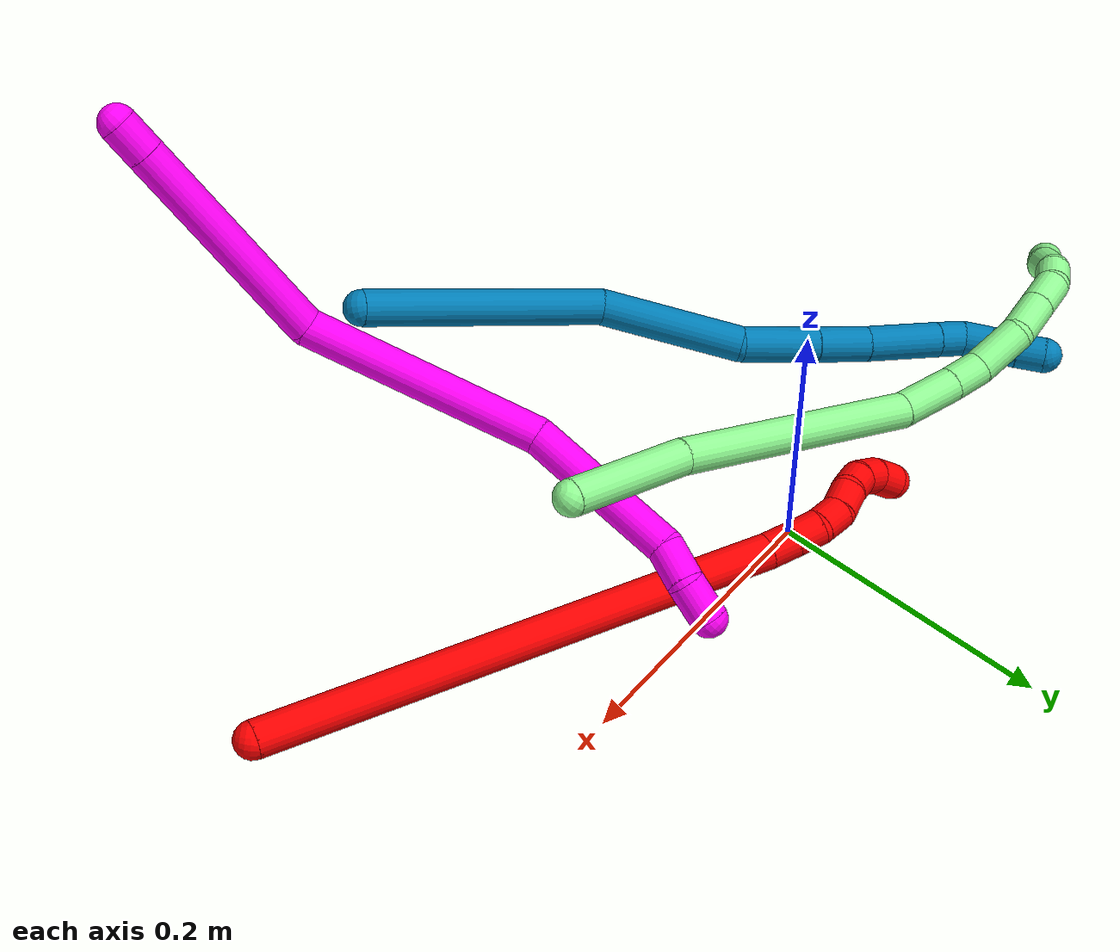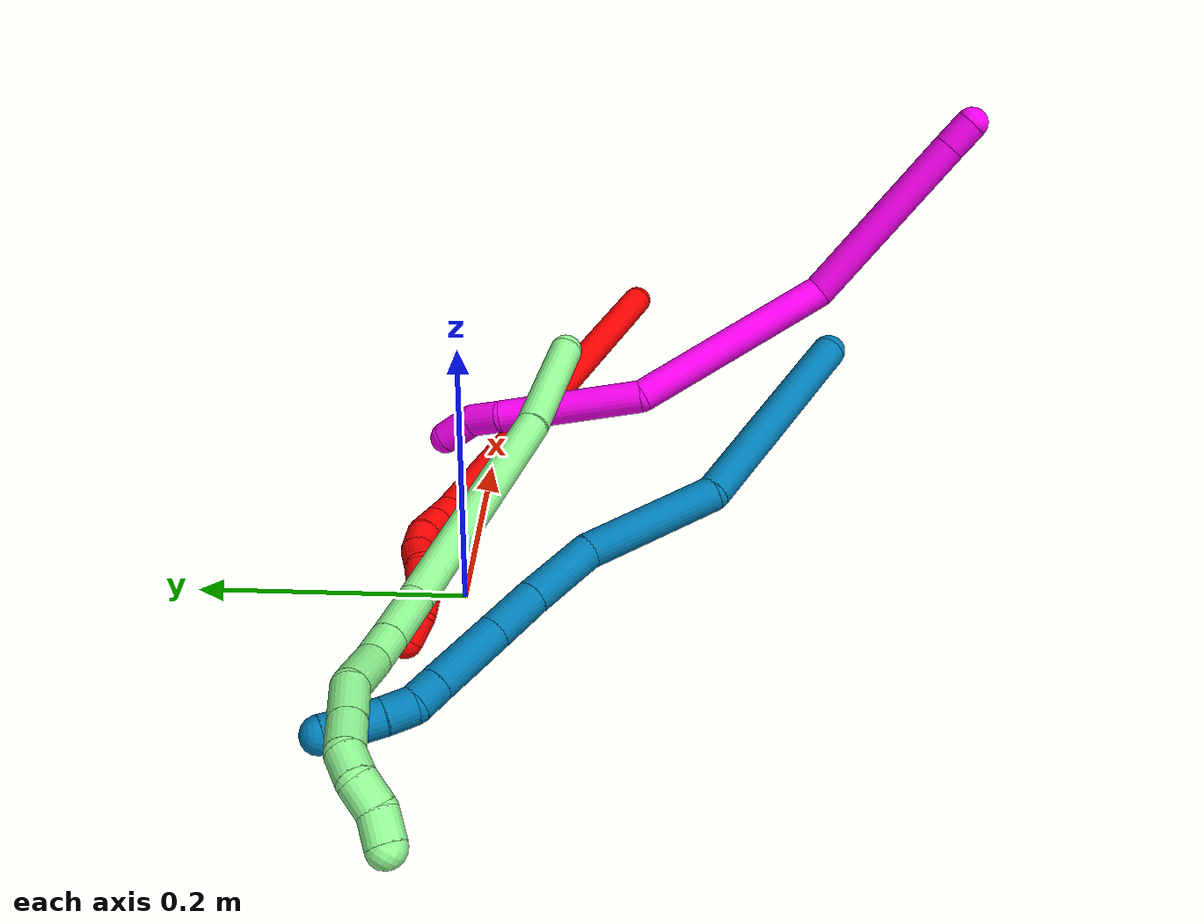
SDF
<sdf version="1.7">
 <world name="default">
  <model name="2">
   <static>0</static>
   <link name="2">
    <collision name="collision-cylinder-e_1_1_4">
     <pose>-0.088012 0.017736 -0.155896 -3.02831 -0.511203 2.71425</pose>
     <geometry><cylinder><radius>0.0125</radius><length>0.359801</length></cylinder></geometry>
     <surface>
      <friction><ode><mu>1.16</mu><mu2>1.16</mu2><slip1>0</slip1><slip2>0</slip2></ode></friction>
      <contact><ode><kp>1e+06</kp><kd>1</kd><max_vel>0</max_vel><min_depth>0.001</min_depth></ode></contact>
     </surface>
    </collision>
    <visual name="visual-cylinder-e_1_1_4">
     <pose>-0.088012 0.017736 -0.155896 -3.02831 -0.511203 2.71425</pose>
     <geometry><cylinder><radius>0.0125</radius><length>0.359801</length></cylinder></geometry>
     <material><ambient>1 0 0 1</ambient></material>
    </visual>
    <collision name="collision-cylinder-e_2_4_5">
     <pose>-0.180778 0.037908 -0.320346 -2.86424 -0.490787 2.12473</pose>
     <geometry><cylinder><radius>0.0125</radius><length>0.020171</length></cylinder></geometry>
     <surface>
      <friction><ode><mu>1.16</mu><mu2>1.16</mu2><slip1>0</slip1><slip2>0</slip2></ode></friction>
      <contact><ode><kp>1e+06</kp><kd>1</kd><max_vel>0</max_vel><min_depth>0.001</min_depth></ode></contact>
     </surface>
    </collision>
    <visual name="visual-cylinder-e_2_4_5">
     <pose>-0.180778 0.037908 -0.320346 -2.86424 -0.490787 2.12473</pose>
     <geometry><cylinder><radius>0.0125</radius><length>0.020171</length></cylinder></geometry>
     <material><ambient>1 0 0 1</ambient></material>
    </visual>
    <collision name="collision-cylinder-e_3_5_6">
     <pose>-0.19037 0.04295 -0.337268 -2.83963 -0.504511 2.07514</pose>
     <geometry><cylinder><radius>0.0125</radius><length>0.020021</length></cylinder></geometry>
     <surface>
      <friction><ode><mu>1.16</mu><mu2>1.16</mu2><slip1>0</slip1><slip2>0</slip2></ode></friction>
      <contact><ode><kp>1e+06</kp><kd>1</kd><max_vel>0</max_vel><min_depth>0.001</min_depth></ode></contact>
     </surface>
    </collision>
    <visual name="visual-cylinder-e_3_5_6">
     <pose>-0.19037 0.04295 -0.337268 -2.83963 -0.504511 2.07514</pose>
     <geometry><cylinder><radius>0.0125</radius><length>0.020021</length></cylinder></geometry>
     <material><ambient>1 0 0 1</ambient></material>
    </visual>
    <collision name="collision-cylinder-e_4_6_7">
     <pose>-0.202535 0.046475 -0.352382 -3.00616 -0.821906 2.8328</pose>
     <geometry><cylinder><radius>0.0125</radius><length>0.020004</length></cylinder></geometry>
     <surface>
      <friction><ode><mu>1.16</mu><mu2>1.16</mu2><slip1>0</slip1><slip2>0</slip2></ode></friction>
      <contact><ode><kp>1e+06</kp><kd>1</kd><max_vel>0</max_vel><min_depth>0.001</min_depth></ode></contact>
     </surface>
    </collision>
    <visual name="visual-cylinder-e_4_6_7">
     <pose>-0.202535 0.046475 -0.352382 -3.00616 -0.821906 2.8328</pose>
     <geometry><cylinder><radius>0.0125</radius><length>0.020004</length></cylinder></geometry>
     <material><ambient>1 0 0 1</ambient></material>
    </visual>
    <collision name="collision-cylinder-e_5_7_8">
     <pose>-0.219032 0.048846 -0.362842 -2.76899 -1.1608 2.5818</pose>
     <geometry><cylinder><radius>0.0125</radius><length>0.020001</length></cylinder></geometry>
     <surface>
      <friction><ode><mu>1.16</mu><mu2>1.16</mu2><slip1>0</slip1><slip2>0</slip2></ode></friction>
      <contact><ode><kp>1e+06</kp><kd>1</kd><max_vel>0</max_vel><min_depth>0.001</min_depth></ode></contact>
     </surface>
    </collision>
    <visual name="visual-cylinder-e_5_7_8">
     <pose>-0.219032 0.048846 -0.362842 -2.76899 -1.1608 2.5818</pose>
     <geometry><cylinder><radius>0.0125</radius><length>0.020001</length></cylinder></geometry>
     <material><ambient>1 0 0 1</ambient></material>
    </visual>
    <collision name="collision-cylinder-e_6_8_9">
     <pose>-0.236994 0.048543 -0.37099 2.76507 -1.07372 -2.52199</pose>
     <geometry><cylinder><radius>0.0125</radius><length>0.020001</length></cylinder></geometry>
     <surface>
      <friction><ode><mu>1.16</mu><mu2>1.16</mu2><slip1>0</slip1><slip2>0</slip2></ode></friction>
      <contact><ode><kp>1e+06</kp><kd>1</kd><max_vel>0</max_vel><min_depth>0.001</min_depth></ode></contact>
     </surface>
    </collision>
    <visual name="visual-cylinder-e_6_8_9">
     <pose>-0.236994 0.048543 -0.37099 2.76507 -1.07372 -2.52199</pose>
     <geometry><cylinder><radius>0.0125</radius><length>0.020001</length></cylinder></geometry>
     <material><ambient>1 0 0 1</ambient></material>
    </visual>
    <collision name="collision-cylinder-e_7_9_10">
     <pose>-0.252074 0.043144 -0.382291 2.65345 -0.68021 -1.91508</pose>
     <geometry><cylinder><radius>0.0125</radius><length>0.02</length></cylinder></geometry>
     <surface>
      <friction><ode><mu>1.16</mu><mu2>1.16</mu2><slip1>0</slip1><slip2>0</slip2></ode></friction>
      <contact><ode><kp>1e+06</kp><kd>1</kd><max_vel>0</max_vel><min_depth>0.001</min_depth></ode></contact>
     </surface>
    </collision>
    <visual name="visual-cylinder-e_7_9_10">
     <pose>-0.252074 0.043144 -0.382291 2.65345 -0.68021 -1.91508</pose>
     <geometry><cylinder><radius>0.0125</radius><length>0.02</length></cylinder></geometry>
     <material><ambient>1 0 0 1</ambient></material>
    </visual>
    <collision name="collision-cylinder-e_8_10_2">
     <pose>-0.261709 0.034583 -0.397199 2.59304 -0.341098 -1.09852</pose>
     <geometry><cylinder><radius>0.0125</radius><length>0.020001</length></cylinder></geometry>
     <surface>
      <friction><ode><mu>1.16</mu><mu2>1.16</mu2><slip1>0</slip1><slip2>0</slip2></ode></friction>
      <contact><ode><kp>1e+06</kp><kd>1</kd><max_vel>0</max_vel><min_depth>0.001</min_depth></ode></contact>
     </surface>
    </collision>
    <visual name="visual-cylinder-e_8_10_2">
     <pose>-0.261709 0.034583 -0.397199 2.59304 -0.341098 -1.09852</pose>
     <geometry><cylinder><radius>0.0125</radius><length>0.020001</length></cylinder></geometry>
     <material><ambient>1 0 0 1</ambient></material>
    </visual>
    <collision name="collision-sphere-2">
     <pose>-0.265055 0.029669 -0.405241 0 -0 0</pose>
     <geometry><sphere><radius>0.0125</radius></sphere></geometry>
     <surface>
      <friction><ode><mu>1.16</mu><mu2>1.16</mu2><slip1>0</slip1><slip2>0</slip2></ode></friction>
      <contact><ode><kp>1e+06</kp><kd>1</kd><max_vel>0</max_vel><min_depth>0.001</min_depth></ode></contact>
     </surface>
    </collision>
    <visual name="visual-sphere-2">
     <pose>-0.265055 0.029669 -0.405241 0 -0 0</pose>
     <geometry><sphere><radius>0.0125</radius></sphere></geometry>
     <material><ambient>1 0 0 1</ambient></material>
    </visual>
    <collision name="collision-sphere-10">
     <pose>-0.258364 0.039498 -0.389157 0 -0 0</pose>
     <geometry><sphere><radius>0.0125</radius></sphere></geometry>
     <surface>
      <friction><ode><mu>1.16</mu><mu2>1.16</mu2><slip1>0</slip1><slip2>0</slip2></ode></friction>
      <contact><ode><kp>1e+06</kp><kd>1</kd><max_vel>0</max_vel><min_depth>0.001</min_depth></ode></contact>
     </surface>
    </collision>
    <visual name="visual-sphere-10">
     <pose>-0.258364 0.039498 -0.389157 0 -0 0</pose>
     <geometry><sphere><radius>0.0125</radius></sphere></geometry>
     <material><ambient>1 0 0 1</ambient></material>
    </visual>
    <collision name="collision-sphere-9">
     <pose>-0.245785 0.04679 -0.375424 0 -0 0</pose>
     <geometry><sphere><radius>0.0125</radius></sphere></geometry>
     <surface>
      <friction><ode><mu>1.16</mu><mu2>1.16</mu2><slip1>0</slip1><slip2>0</slip2></ode></friction>
      <contact><ode><kp>1e+06</kp><kd>1</kd><max_vel>0</max_vel><min_depth>0.001</min_depth></ode></contact>
     </surface>
    </collision>
    <visual name="visual-sphere-9">
     <pose>-0.245785 0.04679 -0.375424 0 -0 0</pose>
     <geometry><sphere><radius>0.0125</radius></sphere></geometry>
     <material><ambient>1 0 0 1</ambient></material>
    </visual>
    <collision name="collision-sphere-4">
     <pose>-0.176024 0.035472 -0.311792 0 -0 0</pose>
     <geometry><sphere><radius>0.0125</radius></sphere></geometry>
     <surface>
      <friction><ode><mu>1.16</mu><mu2>1.16</mu2><slip1>0</slip1><slip2>0</slip2></ode></friction>
      <contact><ode><kp>1e+06</kp><kd>1</kd><max_vel>0</max_vel><min_depth>0.001</min_depth></ode></contact>
     </surface>
    </collision>
    <visual name="visual-sphere-4">
     <pose>-0.176024 0.035472 -0.311792 0 -0 0</pose>
     <geometry><sphere><radius>0.0125</radius></sphere></geometry>
     <material><ambient>1 0 0 1</ambient></material>
    </visual>
    <collision name="collision-sphere-1">
     <geometry><sphere><radius>0.0125</radius></sphere></geometry>
     <surface>
      <friction><ode><mu>1.16</mu><mu2>1.16</mu2><slip1>0</slip1><slip2>0</slip2></ode></friction>
      <contact><ode><kp>1e+06</kp><kd>1</kd><max_vel>0</max_vel><min_depth>0.001</min_depth></ode></contact>
     </surface>
    </collision>
    <visual name="visual-sphere-1">
     <geometry><sphere><radius>0.0125</radius></sphere></geometry>
     <material><ambient>1 0 0 1</ambient></material>
    </visual>
    <collision name="collision-sphere-8">
     <pose>-0.228204 0.050297 -0.366555 0 -0 0</pose>
     <geometry><sphere><radius>0.0125</radius></sphere></geometry>
     <surface>
      <friction><ode><mu>1.16</mu><mu2>1.16</mu2><slip1>0</slip1><slip2>0</slip2></ode></friction>
      <contact><ode><kp>1e+06</kp><kd>1</kd><max_vel>0</max_vel><min_depth>0.001</min_depth></ode></contact>
     </surface>
    </collision>
    <visual name="visual-sphere-8">
     <pose>-0.228204 0.050297 -0.366555 0 -0 0</pose>
     <geometry><sphere><radius>0.0125</radius></sphere></geometry>
     <material><ambient>1 0 0 1</ambient></material>
    </visual>
    <collision name="collision-sphere-5">
     <pose>-0.185531 0.040343 -0.328901 0 -0 0</pose>
     <geometry><sphere><radius>0.0125</radius></sphere></geometry>
     <surface>
      <friction><ode><mu>1.16</mu><mu2>1.16</mu2><slip1>0</slip1><slip2>0</slip2></ode></friction>
      <contact><ode><kp>1e+06</kp><kd>1</kd><max_vel>0</max_vel><min_depth>0.001</min_depth></ode></contact>
     </surface>
    </collision>
    <visual name="visual-sphere-5">
     <pose>-0.185531 0.040343 -0.328901 0 -0 0</pose>
     <geometry><sphere><radius>0.0125</radius></sphere></geometry>
     <material><ambient>1 0 0 1</ambient></material>
    </visual>
    <collision name="collision-sphere-6">
     <pose>-0.195209 0.045556 -0.345635 0 -0 0</pose>
     <geometry><sphere><radius>0.0125</radius></sphere></geometry>
     <surface>
      <friction><ode><mu>1.16</mu><mu2>1.16</mu2><slip1>0</slip1><slip2>0</slip2></ode></friction>
      <contact><ode><kp>1e+06</kp><kd>1</kd><max_vel>0</max_vel><min_depth>0.001</min_depth></ode></contact>
     </surface>
    </collision>
    <visual name="visual-sphere-6">
     <pose>-0.195209 0.045556 -0.345635 0 -0 0</pose>
     <geometry><sphere><radius>0.0125</radius></sphere></geometry>
     <material><ambient>1 0 0 1</ambient></material>
    </visual>
    <collision name="collision-sphere-7">
     <pose>-0.20986 0.047394 -0.359129 0 -0 0</pose>
     <geometry><sphere><radius>0.0125</radius></sphere></geometry>
     <surface>
      <friction><ode><mu>1.16</mu><mu2>1.16</mu2><slip1>0</slip1><slip2>0</slip2></ode></friction>
      <contact><ode><kp>1e+06</kp><kd>1</kd><max_vel>0</max_vel><min_depth>0.001</min_depth></ode></contact>
     </surface>
    </collision>
    <visual name="visual-sphere-7">
     <pose>-0.20986 0.047394 -0.359129 0 -0 0</pose>
     <geometry><sphere><radius>0.0125</radius></sphere></geometry>
     <material><ambient>1 0 0 1</ambient></material>
    </visual>
    <inertial>
     <pose>-0.125146 0.024876 -0.213244 0 -0 0</pose>
     <mass>0.5</mass>
     <inertia>
      <ixx>-0.001707</ixx>
      <ixy>0</ixy>
      <ixz>0</ixz>
      <iyy>0.005029</iyy>
      <iyz>0</iyz>
      <izz>0.001497</izz>
     </inertia>
    </inertial>
   </link>
   <pose>0.380127 -0.12066 0.083753 1.40369 -0.129908 0.675523</pose>
  </model>
  <model name="9">
   <static>0</static>
   <link name="9">
    <collision name="collision-cylinder-e_1_1_4">
     <pose>-0.061289 0.006651 0.059285 -0.111724 -0.798888 0.047203</pose>
     <geometry><cylinder><radius>0.0125</radius><length>0.171059</length></cylinder></geometry>
     <surface>
      <friction><ode><mu>1.16</mu><mu2>1.16</mu2><slip1>0</slip1><slip2>0</slip2></ode></friction>
      <contact><ode><kp>1e+06</kp><kd>1</kd><max_vel>0</max_vel><min_depth>0.001</min_depth></ode></contact>
     </surface>
    </collision>
    <visual name="visual-cylinder-e_1_1_4">
     <pose>-0.061289 0.006651 0.059285 -0.111724 -0.798888 0.047203</pose>
     <geometry><cylinder><radius>0.0125</radius><length>0.171059</length></cylinder></geometry>
     <material><ambient>0 0.490196 0.709804 1</ambient></material>
    </visual>
    <collision name="collision-cylinder-e_2_4_5">
     <pose>-0.142585 0.031893 0.160679 -0.415768 -0.410032 0.087665</pose>
     <geometry><cylinder><radius>0.0125</radius><length>0.100379</length></cylinder></geometry>
     <surface>
      <friction><ode><mu>1.16</mu><mu2>1.16</mu2><slip1>0</slip1><slip2>0</slip2></ode></friction>
      <contact><ode><kp>1e+06</kp><kd>1</kd><max_vel>0</max_vel><min_depth>0.001</min_depth></ode></contact>
     </surface>
    </collision>
    <visual name="visual-cylinder-e_2_4_5">
     <pose>-0.142585 0.031893 0.160679 -0.415768 -0.410032 0.087665</pose>
     <geometry><cylinder><radius>0.0125</radius><length>0.100379</length></cylinder></geometry>
     <material><ambient>0 0.490196 0.709804 1</ambient></material>
    </visual>
    <collision name="collision-cylinder-e_3_5_6">
     <pose>-0.179554 0.053496 0.224488 -0.137893 -0.658785 0.047204</pose>
     <geometry><cylinder><radius>0.0125</radius><length>0.055415</length></cylinder></geometry>
     <surface>
      <friction><ode><mu>1.16</mu><mu2>1.16</mu2><slip1>0</slip1><slip2>0</slip2></ode></friction>
      <contact><ode><kp>1e+06</kp><kd>1</kd><max_vel>0</max_vel><min_depth>0.001</min_depth></ode></contact>
     </surface>
    </collision>
    <visual name="visual-cylinder-e_3_5_6">
     <pose>-0.179554 0.053496 0.224488 -0.137893 -0.658785 0.047204</pose>
     <geometry><cylinder><radius>0.0125</radius><length>0.055415</length></cylinder></geometry>
     <material><ambient>0 0.490196 0.709804 1</ambient></material>
    </visual>
    <collision name="collision-cylinder-e_4_6_7">
     <pose>-0.208752 0.058133 0.260779 -0.110975 -0.694885 0.040224</pose>
     <geometry><cylinder><radius>0.0125</radius><length>0.038223</length></cylinder></geometry>
     <surface>
      <friction><ode><mu>1.16</mu><mu2>1.16</mu2><slip1>0</slip1><slip2>0</slip2></ode></friction>
      <contact><ode><kp>1e+06</kp><kd>1</kd><max_vel>0</max_vel><min_depth>0.001</min_depth></ode></contact>
     </surface>
    </collision>
    <visual name="visual-cylinder-e_4_6_7">
     <pose>-0.208752 0.058133 0.260779 -0.110975 -0.694885 0.040224</pose>
     <geometry><cylinder><radius>0.0125</radius><length>0.038223</length></cylinder></geometry>
     <material><ambient>0 0.490196 0.709804 1</ambient></material>
    </visual>
    <collision name="collision-cylinder-e_5_7_8">
     <pose>-0.238254 0.060973 0.296525 -0.057306 -0.683658 0.020394</pose>
     <geometry><cylinder><radius>0.0125</radius><length>0.054667</length></cylinder></geometry>
     <surface>
      <friction><ode><mu>1.16</mu><mu2>1.16</mu2><slip1>0</slip1><slip2>0</slip2></ode></friction>
      <contact><ode><kp>1e+06</kp><kd>1</kd><max_vel>0</max_vel><min_depth>0.001</min_depth></ode></contact>
     </surface>
    </collision>
    <visual name="visual-cylinder-e_5_7_8">
     <pose>-0.238254 0.060973 0.296525 -0.057306 -0.683658 0.020394</pose>
     <geometry><cylinder><radius>0.0125</radius><length>0.054667</length></cylinder></geometry>
     <material><ambient>0 0.490196 0.709804 1</ambient></material>
    </visual>
    <collision name="collision-cylinder-e_6_8_9">
     <pose>-0.261972 0.062692 0.325394 -0.065505 -0.695659 0.023758</pose>
     <geometry><cylinder><radius>0.0125</radius><length>0.020139</length></cylinder></geometry>
     <surface>
      <friction><ode><mu>1.16</mu><mu2>1.16</mu2><slip1>0</slip1><slip2>0</slip2></ode></friction>
      <contact><ode><kp>1e+06</kp><kd>1</kd><max_vel>0</max_vel><min_depth>0.001</min_depth></ode></contact>
     </surface>
    </collision>
    <visual name="visual-cylinder-e_6_8_9">
     <pose>-0.261972 0.062692 0.325394 -0.065505 -0.695659 0.023758</pose>
     <geometry><cylinder><radius>0.0125</radius><length>0.020139</length></cylinder></geometry>
     <material><ambient>0 0.490196 0.709804 1</ambient></material>
    </visual>
    <collision name="collision-cylinder-e_7_9_10">
     <pose>-0.271652 0.06639 0.342082 -0.341597 -0.326523 0.056809</pose>
     <geometry><cylinder><radius>0.0125</radius><length>0.020115</length></cylinder></geometry>
     <surface>
      <friction><ode><mu>1.16</mu><mu2>1.16</mu2><slip1>0</slip1><slip2>0</slip2></ode></friction>
      <contact><ode><kp>1e+06</kp><kd>1</kd><max_vel>0</max_vel><min_depth>0.001</min_depth></ode></contact>
     </surface>
    </collision>
    <visual name="visual-cylinder-e_7_9_10">
     <pose>-0.271652 0.06639 0.342082 -0.341597 -0.326523 0.056809</pose>
     <geometry><cylinder><radius>0.0125</radius><length>0.020115</length></cylinder></geometry>
     <material><ambient>0 0.490196 0.709804 1</ambient></material>
    </visual>
    <collision name="collision-cylinder-e_8_10_11">
     <pose>-0.277436 0.073144 0.360045 -0.377526 -0.258713 0.049691</pose>
     <geometry><cylinder><radius>0.0125</radius><length>0.020002</length></cylinder></geometry>
     <surface>
      <friction><ode><mu>1.16</mu><mu2>1.16</mu2><slip1>0</slip1><slip2>0</slip2></ode></friction>
      <contact><ode><kp>1e+06</kp><kd>1</kd><max_vel>0</max_vel><min_depth>0.001</min_depth></ode></contact>
     </surface>
    </collision>
    <visual name="visual-cylinder-e_8_10_11">
     <pose>-0.277436 0.073144 0.360045 -0.377526 -0.258713 0.049691</pose>
     <geometry><cylinder><radius>0.0125</radius><length>0.020002</length></cylinder></geometry>
     <material><ambient>0 0.490196 0.709804 1</ambient></material>
    </visual>
    <collision name="collision-cylinder-e_9_11_2">
     <pose>-0.282369 0.079721 0.378268 -0.31531 -0.23968 0.038282</pose>
     <geometry><cylinder><radius>0.0125</radius><length>0.020002</length></cylinder></geometry>
     <surface>
      <friction><ode><mu>1.16</mu><mu2>1.16</mu2><slip1>0</slip1><slip2>0</slip2></ode></friction>
      <contact><ode><kp>1e+06</kp><kd>1</kd><max_vel>0</max_vel><min_depth>0.001</min_depth></ode></contact>
     </surface>
    </collision>
    <visual name="visual-cylinder-e_9_11_2">
     <pose>-0.282369 0.079721 0.378268 -0.31531 -0.23968 0.038282</pose>
     <geometry><cylinder><radius>0.0125</radius><length>0.020002</length></cylinder></geometry>
     <material><ambient>0 0.490196 0.709804 1</ambient></material>
    </visual>
    <collision name="collision-sphere-2">
     <pose>-0.284743 0.082734 0.387504 0 -0 0</pose>
     <geometry><sphere><radius>0.0125</radius></sphere></geometry>
     <surface>
      <friction><ode><mu>1.16</mu><mu2>1.16</mu2><slip1>0</slip1><slip2>0</slip2></ode></friction>
      <contact><ode><kp>1e+06</kp><kd>1</kd><max_vel>0</max_vel><min_depth>0.001</min_depth></ode></contact>
     </surface>
    </collision>
    <visual name="visual-sphere-2">
     <pose>-0.284743 0.082734 0.387504 0 -0 0</pose>
     <geometry><sphere><radius>0.0125</radius></sphere></geometry>
     <material><ambient>0 0.490196 0.709804 1</ambient></material>
    </visual>
    <collision name="collision-sphere-11">
     <pose>-0.279995 0.076708 0.369032 0 -0 0</pose>
     <geometry><sphere><radius>0.0125</radius></sphere></geometry>
     <surface>
      <friction><ode><mu>1.16</mu><mu2>1.16</mu2><slip1>0</slip1><slip2>0</slip2></ode></friction>
      <contact><ode><kp>1e+06</kp><kd>1</kd><max_vel>0</max_vel><min_depth>0.001</min_depth></ode></contact>
     </surface>
    </collision>
    <visual name="visual-sphere-11">
     <pose>-0.279995 0.076708 0.369032 0 -0 0</pose>
     <geometry><sphere><radius>0.0125</radius></sphere></geometry>
     <material><ambient>0 0.490196 0.709804 1</ambient></material>
    </visual>
    <collision name="collision-sphere-10">
     <pose>-0.274878 0.069581 0.351058 0 -0 0</pose>
     <geometry><sphere><radius>0.0125</radius></sphere></geometry>
     <surface>
      <friction><ode><mu>1.16</mu><mu2>1.16</mu2><slip1>0</slip1><slip2>0</slip2></ode></friction>
      <contact><ode><kp>1e+06</kp><kd>1</kd><max_vel>0</max_vel><min_depth>0.001</min_depth></ode></contact>
     </surface>
    </collision>
    <visual name="visual-sphere-10">
     <pose>-0.274878 0.069581 0.351058 0 -0 0</pose>
     <geometry><sphere><radius>0.0125</radius></sphere></geometry>
     <material><ambient>0 0.490196 0.709804 1</ambient></material>
    </visual>
    <collision name="collision-sphere-9">
     <pose>-0.268426 0.063198 0.333107 0 -0 0</pose>
     <geometry><sphere><radius>0.0125</radius></sphere></geometry>
     <surface>
      <friction><ode><mu>1.16</mu><mu2>1.16</mu2><slip1>0</slip1><slip2>0</slip2></ode></friction>
      <contact><ode><kp>1e+06</kp><kd>1</kd><max_vel>0</max_vel><min_depth>0.001</min_depth></ode></contact>
     </surface>
    </collision>
    <visual name="visual-sphere-9">
     <pose>-0.268426 0.063198 0.333107 0 -0 0</pose>
     <geometry><sphere><radius>0.0125</radius></sphere></geometry>
     <material><ambient>0 0.490196 0.709804 1</ambient></material>
    </visual>
    <collision name="collision-sphere-4">
     <pose>-0.122578 0.013303 0.118571 0 -0 0</pose>
     <geometry><sphere><radius>0.0125</radius></sphere></geometry>
     <surface>
      <friction><ode><mu>1.16</mu><mu2>1.16</mu2><slip1>0</slip1><slip2>0</slip2></ode></friction>
      <contact><ode><kp>1e+06</kp><kd>1</kd><max_vel>0</max_vel><min_depth>0.001</min_depth></ode></contact>
     </surface>
    </collision>
    <visual name="visual-sphere-4">
     <pose>-0.122578 0.013303 0.118571 0 -0 0</pose>
     <geometry><sphere><radius>0.0125</radius></sphere></geometry>
     <material><ambient>0 0.490196 0.709804 1</ambient></material>
    </visual>
    <collision name="collision-sphere-1">
     <geometry><sphere><radius>0.0125</radius></sphere></geometry>
     <surface>
      <friction><ode><mu>1.16</mu><mu2>1.16</mu2><slip1>0</slip1><slip2>0</slip2></ode></friction>
      <contact><ode><kp>1e+06</kp><kd>1</kd><max_vel>0</max_vel><min_depth>0.001</min_depth></ode></contact>
     </surface>
    </collision>
    <visual name="visual-sphere-1">
     <geometry><sphere><radius>0.0125</radius></sphere></geometry>
     <material><ambient>0 0.490196 0.709804 1</ambient></material>
    </visual>
    <collision name="collision-sphere-8">
     <pose>-0.255519 0.062186 0.317681 0 -0 0</pose>
     <geometry><sphere><radius>0.0125</radius></sphere></geometry>
     <surface>
      <friction><ode><mu>1.16</mu><mu2>1.16</mu2><slip1>0</slip1><slip2>0</slip2></ode></friction>
      <contact><ode><kp>1e+06</kp><kd>1</kd><max_vel>0</max_vel><min_depth>0.001</min_depth></ode></contact>
     </surface>
    </collision>
    <visual name="visual-sphere-8">
     <pose>-0.255519 0.062186 0.317681 0 -0 0</pose>
     <geometry><sphere><radius>0.0125</radius></sphere></geometry>
     <material><ambient>0 0.490196 0.709804 1</ambient></material>
    </visual>
    <collision name="collision-sphere-5">
     <pose>-0.162593 0.050484 0.202787 0 -0 0</pose>
     <geometry><sphere><radius>0.0125</radius></sphere></geometry>
     <surface>
      <friction><ode><mu>1.16</mu><mu2>1.16</mu2><slip1>0</slip1><slip2>0</slip2></ode></friction>
      <contact><ode><kp>1e+06</kp><kd>1</kd><max_vel>0</max_vel><min_depth>0.001</min_depth></ode></contact>
     </surface>
    </collision>
    <visual name="visual-sphere-5">
     <pose>-0.162593 0.050484 0.202787 0 -0 0</pose>
     <geometry><sphere><radius>0.0125</radius></sphere></geometry>
     <material><ambient>0 0.490196 0.709804 1</ambient></material>
    </visual>
    <collision name="collision-sphere-6">
     <pose>-0.196516 0.056508 0.246189 0 -0 0</pose>
     <geometry><sphere><radius>0.0125</radius></sphere></geometry>
     <surface>
      <friction><ode><mu>1.16</mu><mu2>1.16</mu2><slip1>0</slip1><slip2>0</slip2></ode></friction>
      <contact><ode><kp>1e+06</kp><kd>1</kd><max_vel>0</max_vel><min_depth>0.001</min_depth></ode></contact>
     </surface>
    </collision>
    <visual name="visual-sphere-6">
     <pose>-0.196516 0.056508 0.246189 0 -0 0</pose>
     <geometry><sphere><radius>0.0125</radius></sphere></geometry>
     <material><ambient>0 0.490196 0.709804 1</ambient></material>
    </visual>
    <collision name="collision-sphere-7">
     <pose>-0.220989 0.059759 0.275369 0 -0 0</pose>
     <geometry><sphere><radius>0.0125</radius></sphere></geometry>
     <surface>
      <friction><ode><mu>1.16</mu><mu2>1.16</mu2><slip1>0</slip1><slip2>0</slip2></ode></friction>
      <contact><ode><kp>1e+06</kp><kd>1</kd><max_vel>0</max_vel><min_depth>0.001</min_depth></ode></contact>
     </surface>
    </collision>
    <visual name="visual-sphere-7">
     <pose>-0.220989 0.059759 0.275369 0 -0 0</pose>
     <geometry><sphere><radius>0.0125</radius></sphere></geometry>
     <material><ambient>0 0.490196 0.709804 1</ambient></material>
    </visual>
    <inertial>
     <pose>-0.155375 0.037029 0.186178 0 -0 0</pose>
     <mass>0.5</mass>
     <inertia>
      <ixx>0.000411</ixx>
      <ixy>0</ixy>
      <ixz>0</ixz>
      <iyy>0.000576</iyy>
      <iyz>0</iyz>
      <izz>0.000325</izz>
     </inertia>
    </inertial>
   </link>
   <pose>0.125991 -0.268046 0.148795 -1.03496 -0.768588 0.139121</pose>
  </model>
  <model name="10">
   <static>0</static>
   <link name="10">
    <collision name="collision-cylinder-e_1_1_4">
     <pose>-0.000358 -0.001863 -0.011806 2.98506 -0.029932 -0.377157</pose>
     <geometry><cylinder><radius>0.0125</radius><length>0.023915</length></cylinder></geometry>
     <surface>
      <friction><ode><mu>1.16</mu><mu2>1.16</mu2><slip1>0</slip1><slip2>0</slip2></ode></friction>
      <contact><ode><kp>1e+06</kp><kd>1</kd><max_vel>0</max_vel><min_depth>0.001</min_depth></ode></contact>
     </surface>
    </collision>
    <visual name="visual-cylinder-e_1_1_4">
     <pose>-0.000358 -0.001863 -0.011806 2.98506 -0.029932 -0.377157</pose>
     <geometry><cylinder><radius>0.0125</radius><length>0.023915</length></cylinder></geometry>
     <material><ambient>1 0 0.964706 1</ambient></material>
    </visual>
    <collision name="collision-cylinder-e_2_4_5">
     <pose>-0.003509 -0.016062 -0.095478 2.9716 -0.038294 -0.442163</pose>
     <geometry><cylinder><radius>0.0125</radius><length>0.145942</length></cylinder></geometry>
     <surface>
      <friction><ode><mu>1.16</mu><mu2>1.16</mu2><slip1>0</slip1><slip2>0</slip2></ode></friction>
      <contact><ode><kp>1e+06</kp><kd>1</kd><max_vel>0</max_vel><min_depth>0.001</min_depth></ode></contact>
     </surface>
    </collision>
    <visual name="visual-cylinder-e_2_4_5">
     <pose>-0.003509 -0.016062 -0.095478 2.9716 -0.038294 -0.442163</pose>
     <geometry><cylinder><radius>0.0125</radius><length>0.145942</length></cylinder></geometry>
     <material><ambient>1 0 0.964706 1</ambient></material>
    </visual>
    <collision name="collision-cylinder-e_3_5_6">
     <pose>-0.027857 -0.008464 -0.243796 -2.88653 -0.266332 1.61451</pose>
     <geometry><cylinder><radius>0.0125</radius><length>0.163788</length></cylinder></geometry>
     <surface>
      <friction><ode><mu>1.16</mu><mu2>1.16</mu2><slip1>0</slip1><slip2>0</slip2></ode></friction>
      <contact><ode><kp>1e+06</kp><kd>1</kd><max_vel>0</max_vel><min_depth>0.001</min_depth></ode></contact>
     </surface>
    </collision>
    <visual name="visual-cylinder-e_3_5_6">
     <pose>-0.027857 -0.008464 -0.243796 -2.88653 -0.266332 1.61451</pose>
     <geometry><cylinder><radius>0.0125</radius><length>0.163788</length></cylinder></geometry>
     <material><ambient>1 0 0.964706 1</ambient></material>
    </visual>
    <collision name="collision-cylinder-e_4_6_7">
     <pose>-0.040368 0.037895 -0.368646 -2.64186 0.162551 -0.617916</pose>
     <geometry><cylinder><radius>0.0125</radius><length>0.11176</length></cylinder></geometry>
     <surface>
      <friction><ode><mu>1.16</mu><mu2>1.16</mu2><slip1>0</slip1><slip2>0</slip2></ode></friction>
      <contact><ode><kp>1e+06</kp><kd>1</kd><max_vel>0</max_vel><min_depth>0.001</min_depth></ode></contact>
     </surface>
    </collision>
    <visual name="visual-cylinder-e_4_6_7">
     <pose>-0.040368 0.037895 -0.368646 -2.64186 0.162551 -0.617916</pose>
     <geometry><cylinder><radius>0.0125</radius><length>0.11176</length></cylinder></geometry>
     <material><ambient>1 0 0.964706 1</ambient></material>
    </visual>
    <collision name="collision-cylinder-e_5_7_8">
     <pose>-0.025352 0.068545 -0.428115 -2.77686 0.466903 -1.82229</pose>
     <geometry><cylinder><radius>0.0125</radius><length>0.026538</length></cylinder></geometry>
     <surface>
      <friction><ode><mu>1.16</mu><mu2>1.16</mu2><slip1>0</slip1><slip2>0</slip2></ode></friction>
      <contact><ode><kp>1e+06</kp><kd>1</kd><max_vel>0</max_vel><min_depth>0.001</min_depth></ode></contact>
     </surface>
    </collision>
    <visual name="visual-cylinder-e_5_7_8">
     <pose>-0.025352 0.068545 -0.428115 -2.77686 0.466903 -1.82229</pose>
     <geometry><cylinder><radius>0.0125</radius><length>0.026538</length></cylinder></geometry>
     <material><ambient>1 0 0.964706 1</ambient></material>
    </visual>
    <collision name="collision-cylinder-e_6_8_2">
     <pose>-0.016109 0.073061 -0.452823 -3.12039 0.235254 -2.96263</pose>
     <geometry><cylinder><radius>0.0125</radius><length>0.028057</length></cylinder></geometry>
     <surface>
      <friction><ode><mu>1.16</mu><mu2>1.16</mu2><slip1>0</slip1><slip2>0</slip2></ode></friction>
      <contact><ode><kp>1e+06</kp><kd>1</kd><max_vel>0</max_vel><min_depth>0.001</min_depth></ode></contact>
     </surface>
    </collision>
    <visual name="visual-cylinder-e_6_8_2">
     <pose>-0.016109 0.073061 -0.452823 -3.12039 0.235254 -2.96263</pose>
     <geometry><cylinder><radius>0.0125</radius><length>0.028057</length></cylinder></geometry>
     <material><ambient>1 0 0.964706 1</ambient></material>
    </visual>
    <collision name="collision-sphere-2">
     <pose>-0.012839 0.07335 -0.466463 0 -0 0</pose>
     <geometry><sphere><radius>0.0125</radius></sphere></geometry>
     <surface>
      <friction><ode><mu>1.16</mu><mu2>1.16</mu2><slip1>0</slip1><slip2>0</slip2></ode></friction>
      <contact><ode><kp>1e+06</kp><kd>1</kd><max_vel>0</max_vel><min_depth>0.001</min_depth></ode></contact>
     </surface>
    </collision>
    <visual name="visual-sphere-2">
     <pose>-0.012839 0.07335 -0.466463 0 -0 0</pose>
     <geometry><sphere><radius>0.0125</radius></sphere></geometry>
     <material><ambient>1 0 0.964706 1</ambient></material>
    </visual>
    <collision name="collision-sphere-4">
     <pose>-0.000716 -0.003726 -0.023612 0 -0 0</pose>
     <geometry><sphere><radius>0.0125</radius></sphere></geometry>
     <surface>
      <friction><ode><mu>1.16</mu><mu2>1.16</mu2><slip1>0</slip1><slip2>0</slip2></ode></friction>
      <contact><ode><kp>1e+06</kp><kd>1</kd><max_vel>0</max_vel><min_depth>0.001</min_depth></ode></contact>
     </surface>
    </collision>
    <visual name="visual-sphere-4">
     <pose>-0.000716 -0.003726 -0.023612 0 -0 0</pose>
     <geometry><sphere><radius>0.0125</radius></sphere></geometry>
     <material><ambient>1 0 0.964706 1</ambient></material>
    </visual>
    <collision name="collision-sphere-1">
     <geometry><sphere><radius>0.0125</radius></sphere></geometry>
     <surface>
      <friction><ode><mu>1.16</mu><mu2>1.16</mu2><slip1>0</slip1><slip2>0</slip2></ode></friction>
      <contact><ode><kp>1e+06</kp><kd>1</kd><max_vel>0</max_vel><min_depth>0.001</min_depth></ode></contact>
     </surface>
    </collision>
    <visual name="visual-sphere-1">
     <geometry><sphere><radius>0.0125</radius></sphere></geometry>
     <material><ambient>1 0 0.964706 1</ambient></material>
    </visual>
    <collision name="collision-sphere-8">
     <pose>-0.019379 0.072772 -0.439184 0 -0 0</pose>
     <geometry><sphere><radius>0.0125</radius></sphere></geometry>
     <surface>
      <friction><ode><mu>1.16</mu><mu2>1.16</mu2><slip1>0</slip1><slip2>0</slip2></ode></friction>
      <contact><ode><kp>1e+06</kp><kd>1</kd><max_vel>0</max_vel><min_depth>0.001</min_depth></ode></contact>
     </surface>
    </collision>
    <visual name="visual-sphere-8">
     <pose>-0.019379 0.072772 -0.439184 0 -0 0</pose>
     <geometry><sphere><radius>0.0125</radius></sphere></geometry>
     <material><ambient>1 0 0.964706 1</ambient></material>
    </visual>
    <collision name="collision-sphere-5">
     <pose>-0.006303 -0.028398 -0.167345 0 -0 0</pose>
     <geometry><sphere><radius>0.0125</radius></sphere></geometry>
     <surface>
      <friction><ode><mu>1.16</mu><mu2>1.16</mu2><slip1>0</slip1><slip2>0</slip2></ode></friction>
      <contact><ode><kp>1e+06</kp><kd>1</kd><max_vel>0</max_vel><min_depth>0.001</min_depth></ode></contact>
     </surface>
    </collision>
    <visual name="visual-sphere-5">
     <pose>-0.006303 -0.028398 -0.167345 0 -0 0</pose>
     <geometry><sphere><radius>0.0125</radius></sphere></geometry>
     <material><ambient>1 0 0.964706 1</ambient></material>
    </visual>
    <collision name="collision-sphere-6">
     <pose>-0.049411 0.01147 -0.320246 0 -0 0</pose>
     <geometry><sphere><radius>0.0125</radius></sphere></geometry>
     <surface>
      <friction><ode><mu>1.16</mu><mu2>1.16</mu2><slip1>0</slip1><slip2>0</slip2></ode></friction>
      <contact><ode><kp>1e+06</kp><kd>1</kd><max_vel>0</max_vel><min_depth>0.001</min_depth></ode></contact>
     </surface>
    </collision>
    <visual name="visual-sphere-6">
     <pose>-0.049411 0.01147 -0.320246 0 -0 0</pose>
     <geometry><sphere><radius>0.0125</radius></sphere></geometry>
     <material><ambient>1 0 0.964706 1</ambient></material>
    </visual>
    <collision name="collision-sphere-7">
     <pose>-0.031324 0.064319 -0.417046 0 -0 0</pose>
     <geometry><sphere><radius>0.0125</radius></sphere></geometry>
     <surface>
      <friction><ode><mu>1.16</mu><mu2>1.16</mu2><slip1>0</slip1><slip2>0</slip2></ode></friction>
      <contact><ode><kp>1e+06</kp><kd>1</kd><max_vel>0</max_vel><min_depth>0.001</min_depth></ode></contact>
     </surface>
    </collision>
    <visual name="visual-sphere-7">
     <pose>-0.031324 0.064319 -0.417046 0 -0 0</pose>
     <geometry><sphere><radius>0.0125</radius></sphere></geometry>
     <material><ambient>1 0 0.964706 1</ambient></material>
    </visual>
    <inertial>
     <pose>-0.021439 0.008658 -0.238827 0 -0 0</pose>
     <mass>0.5</mass>
     <inertia>
      <ixx>0.000491</ixx>
      <ixy>0</ixy>
      <ixz>0</ixz>
      <iyy>-9.4e-05</iyy>
      <iyz>0</iyz>
      <izz>-5.3e-05</izz>
     </inertia>
    </inertial>
   </link>
   <pose>0.204553 -0.371733 0.305119 0.880176 0.067253 0.117453</pose>
  </model>
  <model name="13">
   <static>0</static>
   <link name="13">
    <collision name="collision-cylinder-e_1_1_4">
     <pose>-0.024539 0.015116 0.034407 -0.413947 -0.578464 0.124808</pose>
     <geometry><cylinder><radius>0.0125</radius><length>0.089767</length></cylinder></geometry>
     <surface>
      <friction><ode><mu>1.16</mu><mu2>1.16</mu2><slip1>0</slip1><slip2>0</slip2></ode></friction>
      <contact><ode><kp>1e+06</kp><kd>1</kd><max_vel>0</max_vel><min_depth>0.001</min_depth></ode></contact>
     </surface>
    </collision>
    <visual name="visual-cylinder-e_1_1_4">
     <pose>-0.024539 0.015116 0.034407 -0.413947 -0.578464 0.124808</pose>
     <geometry><cylinder><radius>0.0125</radius><length>0.089767</length></cylinder></geometry>
     <material><ambient>0.564706 0.984314 0.572549 1</ambient></material>
    </visual>
    <collision name="collision-cylinder-e_2_4_5">
     <pose>-0.097405 0.048285 0.14302 -0.238645 -0.564182 0.069466</pose>
     <geometry><cylinder><radius>0.0125</radius><length>0.180753</length></cylinder></geometry>
     <surface>
      <friction><ode><mu>1.16</mu><mu2>1.16</mu2><slip1>0</slip1><slip2>0</slip2></ode></friction>
      <contact><ode><kp>1e+06</kp><kd>1</kd><max_vel>0</max_vel><min_depth>0.001</min_depth></ode></contact>
     </surface>
    </collision>
    <visual name="visual-cylinder-e_2_4_5">
     <pose>-0.097405 0.048285 0.14302 -0.238645 -0.564182 0.069466</pose>
     <geometry><cylinder><radius>0.0125</radius><length>0.180753</length></cylinder></geometry>
     <material><ambient>0.564706 0.984314 0.572549 1</ambient></material>
    </visual>
    <collision name="collision-cylinder-e_3_5_6">
     <pose>-0.161555 0.072197 0.231551 -0.388263 -0.796446 0.16505</pose>
     <geometry><cylinder><radius>0.0125</radius><length>0.044267</length></cylinder></geometry>
     <surface>
      <friction><ode><mu>1.16</mu><mu2>1.16</mu2><slip1>0</slip1><slip2>0</slip2></ode></friction>
      <contact><ode><kp>1e+06</kp><kd>1</kd><max_vel>0</max_vel><min_depth>0.001</min_depth></ode></contact>
     </surface>
    </collision>
    <visual name="visual-cylinder-e_3_5_6">
     <pose>-0.161555 0.072197 0.231551 -0.388263 -0.796446 0.16505</pose>
     <geometry><cylinder><radius>0.0125</radius><length>0.044267</length></cylinder></geometry>
     <material><ambient>0.564706 0.984314 0.572549 1</ambient></material>
    </visual>
    <collision name="collision-cylinder-e_4_6_7">
     <pose>-0.187199 0.081493 0.253562 -0.420468 -0.862133 0.195652</pose>
     <geometry><cylinder><radius>0.0125</radius><length>0.025872</length></cylinder></geometry>
     <surface>
      <friction><ode><mu>1.16</mu><mu2>1.16</mu2><slip1>0</slip1><slip2>0</slip2></ode></friction>
      <contact><ode><kp>1e+06</kp><kd>1</kd><max_vel>0</max_vel><min_depth>0.001</min_depth></ode></contact>
     </surface>
    </collision>
    <visual name="visual-cylinder-e_4_6_7">
     <pose>-0.187199 0.081493 0.253562 -0.420468 -0.862133 0.195652</pose>
     <geometry><cylinder><radius>0.0125</radius><length>0.025872</length></cylinder></geometry>
     <material><ambient>0.564706 0.984314 0.572549 1</ambient></material>
    </visual>
    <collision name="collision-cylinder-e_5_7_8">
     <pose>-0.213931 0.090332 0.269133 -0.600662 -1.05634 0.357535</pose>
     <geometry><cylinder><radius>0.0125</radius><length>0.038849</length></cylinder></geometry>
     <surface>
      <friction><ode><mu>1.16</mu><mu2>1.16</mu2><slip1>0</slip1><slip2>0</slip2></ode></friction>
      <contact><ode><kp>1e+06</kp><kd>1</kd><max_vel>0</max_vel><min_depth>0.001</min_depth></ode></contact>
     </surface>
    </collision>
    <visual name="visual-cylinder-e_5_7_8">
     <pose>-0.213931 0.090332 0.269133 -0.600662 -1.05634 0.357535</pose>
     <geometry><cylinder><radius>0.0125</radius><length>0.038849</length></cylinder></geometry>
     <material><ambient>0.564706 0.984314 0.572549 1</ambient></material>
    </visual>
    <collision name="collision-cylinder-e_6_8_9">
     <pose>-0.241478 0.105466 0.284379 -0.923184 -0.716943 0.368508</pose>
     <geometry><cylinder><radius>0.0125</radius><length>0.032375</length></cylinder></geometry>
     <surface>
      <friction><ode><mu>1.16</mu><mu2>1.16</mu2><slip1>0</slip1><slip2>0</slip2></ode></friction>
      <contact><ode><kp>1e+06</kp><kd>1</kd><max_vel>0</max_vel><min_depth>0.001</min_depth></ode></contact>
     </surface>
    </collision>
    <visual name="visual-cylinder-e_6_8_9">
     <pose>-0.241478 0.105466 0.284379 -0.923184 -0.716943 0.368508</pose>
     <geometry><cylinder><radius>0.0125</radius><length>0.032375</length></cylinder></geometry>
     <material><ambient>0.564706 0.984314 0.572549 1</ambient></material>
    </visual>
    <collision name="collision-cylinder-e_7_9_10">
     <pose>-0.260739 0.123085 0.297704 -0.923457 -0.717231 0.368789</pose>
     <geometry><cylinder><radius>0.0125</radius><length>0.026242</length></cylinder></geometry>
     <surface>
      <friction><ode><mu>1.16</mu><mu2>1.16</mu2><slip1>0</slip1><slip2>0</slip2></ode></friction>
      <contact><ode><kp>1e+06</kp><kd>1</kd><max_vel>0</max_vel><min_depth>0.001</min_depth></ode></contact>
     </surface>
    </collision>
    <visual name="visual-cylinder-e_7_9_10">
     <pose>-0.260739 0.123085 0.297704 -0.923457 -0.717231 0.368789</pose>
     <geometry><cylinder><radius>0.0125</radius><length>0.026242</length></cylinder></geometry>
     <material><ambient>0.564706 0.984314 0.572549 1</ambient></material>
    </visual>
    <collision name="collision-cylinder-e_8_10_11">
     <pose>-0.272768 0.13968 0.307261 -1.17939 -0.34689 0.233401</pose>
     <geometry><cylinder><radius>0.0125</radius><length>0.020031</length></cylinder></geometry>
     <surface>
      <friction><ode><mu>1.16</mu><mu2>1.16</mu2><slip1>0</slip1><slip2>0</slip2></ode></friction>
      <contact><ode><kp>1e+06</kp><kd>1</kd><max_vel>0</max_vel><min_depth>0.001</min_depth></ode></contact>
     </surface>
    </collision>
    <visual name="visual-cylinder-e_8_10_11">
     <pose>-0.272768 0.13968 0.307261 -1.17939 -0.34689 0.233401</pose>
     <geometry><cylinder><radius>0.0125</radius><length>0.020031</length></cylinder></geometry>
     <material><ambient>0.564706 0.984314 0.572549 1</ambient></material>
    </visual>
    <collision name="collision-cylinder-e_9_11_12">
     <pose>-0.275344 0.158321 0.314457 -1.22287 0.078362 -0.054951</pose>
     <geometry><cylinder><radius>0.0125</radius><length>0.0212</length></cylinder></geometry>
     <surface>
      <friction><ode><mu>1.16</mu><mu2>1.16</mu2><slip1>0</slip1><slip2>0</slip2></ode></friction>
      <contact><ode><kp>1e+06</kp><kd>1</kd><max_vel>0</max_vel><min_depth>0.001</min_depth></ode></contact>
     </surface>
    </collision>
    <visual name="visual-cylinder-e_9_11_12">
     <pose>-0.275344 0.158321 0.314457 -1.22287 0.078362 -0.054951</pose>
     <geometry><cylinder><radius>0.0125</radius><length>0.0212</length></cylinder></geometry>
     <material><ambient>0.564706 0.984314 0.572549 1</ambient></material>
    </visual>
    <collision name="collision-cylinder-e_10_12_2">
     <pose>-0.275351 0.17641 0.324332 -0.915175 -0.081149 0.039978</pose>
     <geometry><cylinder><radius>0.0125</radius><length>0.020643</length></cylinder></geometry>
     <surface>
      <friction><ode><mu>1.16</mu><mu2>1.16</mu2><slip1>0</slip1><slip2>0</slip2></ode></friction>
      <contact><ode><kp>1e+06</kp><kd>1</kd><max_vel>0</max_vel><min_depth>0.001</min_depth></ode></contact>
     </surface>
    </collision>
    <visual name="visual-cylinder-e_10_12_2">
     <pose>-0.275351 0.17641 0.324332 -0.915175 -0.081149 0.039978</pose>
     <geometry><cylinder><radius>0.0125</radius><length>0.020643</length></cylinder></geometry>
     <material><ambient>0.564706 0.984314 0.572549 1</ambient></material>
    </visual>
    <collision name="collision-sphere-2">
     <pose>-0.276187 0.184565 0.330604 0 -0 0</pose>
     <geometry><sphere><radius>0.0125</radius></sphere></geometry>
     <surface>
      <friction><ode><mu>1.16</mu><mu2>1.16</mu2><slip1>0</slip1><slip2>0</slip2></ode></friction>
      <contact><ode><kp>1e+06</kp><kd>1</kd><max_vel>0</max_vel><min_depth>0.001</min_depth></ode></contact>
     </surface>
    </collision>
    <visual name="visual-sphere-2">
     <pose>-0.276187 0.184565 0.330604 0 -0 0</pose>
     <geometry><sphere><radius>0.0125</radius></sphere></geometry>
     <material><ambient>0.564706 0.984314 0.572549 1</ambient></material>
    </visual>
    <collision name="collision-sphere-12">
     <pose>-0.274514 0.168256 0.31806 0 -0 0</pose>
     <geometry><sphere><radius>0.0125</radius></sphere></geometry>
     <surface>
      <friction><ode><mu>1.16</mu><mu2>1.16</mu2><slip1>0</slip1><slip2>0</slip2></ode></friction>
      <contact><ode><kp>1e+06</kp><kd>1</kd><max_vel>0</max_vel><min_depth>0.001</min_depth></ode></contact>
     </surface>
    </collision>
    <visual name="visual-sphere-12">
     <pose>-0.274514 0.168256 0.31806 0 -0 0</pose>
     <geometry><sphere><radius>0.0125</radius></sphere></geometry>
     <material><ambient>0.564706 0.984314 0.572549 1</ambient></material>
    </visual>
    <collision name="collision-sphere-11">
     <pose>-0.276173 0.148387 0.310854 0 -0 0</pose>
     <geometry><sphere><radius>0.0125</radius></sphere></geometry>
     <surface>
      <friction><ode><mu>1.16</mu><mu2>1.16</mu2><slip1>0</slip1><slip2>0</slip2></ode></friction>
      <contact><ode><kp>1e+06</kp><kd>1</kd><max_vel>0</max_vel><min_depth>0.001</min_depth></ode></contact>
     </surface>
    </collision>
    <visual name="visual-sphere-11">
     <pose>-0.276173 0.148387 0.310854 0 -0 0</pose>
     <geometry><sphere><radius>0.0125</radius></sphere></geometry>
     <material><ambient>0.564706 0.984314 0.572549 1</ambient></material>
    </visual>
    <collision name="collision-sphere-10">
     <pose>-0.269363 0.130973 0.303668 0 -0 0</pose>
     <geometry><sphere><radius>0.0125</radius></sphere></geometry>
     <surface>
      <friction><ode><mu>1.16</mu><mu2>1.16</mu2><slip1>0</slip1><slip2>0</slip2></ode></friction>
      <contact><ode><kp>1e+06</kp><kd>1</kd><max_vel>0</max_vel><min_depth>0.001</min_depth></ode></contact>
     </surface>
    </collision>
    <visual name="visual-sphere-10">
     <pose>-0.269363 0.130973 0.303668 0 -0 0</pose>
     <geometry><sphere><radius>0.0125</radius></sphere></geometry>
     <material><ambient>0.564706 0.984314 0.572549 1</ambient></material>
    </visual>
    <collision name="collision-sphere-9">
     <pose>-0.252114 0.115197 0.291741 0 -0 0</pose>
     <geometry><sphere><radius>0.0125</radius></sphere></geometry>
     <surface>
      <friction><ode><mu>1.16</mu><mu2>1.16</mu2><slip1>0</slip1><slip2>0</slip2></ode></friction>
      <contact><ode><kp>1e+06</kp><kd>1</kd><max_vel>0</max_vel><min_depth>0.001</min_depth></ode></contact>
     </surface>
    </collision>
    <visual name="visual-sphere-9">
     <pose>-0.252114 0.115197 0.291741 0 -0 0</pose>
     <geometry><sphere><radius>0.0125</radius></sphere></geometry>
     <material><ambient>0.564706 0.984314 0.572549 1</ambient></material>
    </visual>
    <collision name="collision-sphere-4">
     <pose>-0.049079 0.030232 0.068814 0 -0 0</pose>
     <geometry><sphere><radius>0.0125</radius></sphere></geometry>
     <surface>
      <friction><ode><mu>1.16</mu><mu2>1.16</mu2><slip1>0</slip1><slip2>0</slip2></ode></friction>
      <contact><ode><kp>1e+06</kp><kd>1</kd><max_vel>0</max_vel><min_depth>0.001</min_depth></ode></contact>
     </surface>
    </collision>
    <visual name="visual-sphere-4">
     <pose>-0.049079 0.030232 0.068814 0 -0 0</pose>
     <geometry><sphere><radius>0.0125</radius></sphere></geometry>
     <material><ambient>0.564706 0.984314 0.572549 1</ambient></material>
    </visual>
    <collision name="collision-sphere-1">
     <geometry><sphere><radius>0.0125</radius></sphere></geometry>
     <surface>
      <friction><ode><mu>1.16</mu><mu2>1.16</mu2><slip1>0</slip1><slip2>0</slip2></ode></friction>
      <contact><ode><kp>1e+06</kp><kd>1</kd><max_vel>0</max_vel><min_depth>0.001</min_depth></ode></contact>
     </surface>
    </collision>
    <visual name="visual-sphere-1">
     <geometry><sphere><radius>0.0125</radius></sphere></geometry>
     <material><ambient>0.564706 0.984314 0.572549 1</ambient></material>
    </visual>
    <collision name="collision-sphere-8">
     <pose>-0.230841 0.095734 0.277018 0 -0 0</pose>
     <geometry><sphere><radius>0.0125</radius></sphere></geometry>
     <surface>
      <friction><ode><mu>1.16</mu><mu2>1.16</mu2><slip1>0</slip1><slip2>0</slip2></ode></friction>
      <contact><ode><kp>1e+06</kp><kd>1</kd><max_vel>0</max_vel><min_depth>0.001</min_depth></ode></contact>
     </surface>
    </collision>
    <visual name="visual-sphere-8">
     <pose>-0.230841 0.095734 0.277018 0 -0 0</pose>
     <geometry><sphere><radius>0.0125</radius></sphere></geometry>
     <material><ambient>0.564706 0.984314 0.572549 1</ambient></material>
    </visual>
    <collision name="collision-sphere-5">
     <pose>-0.145732 0.066338 0.217226 0 -0 0</pose>
     <geometry><sphere><radius>0.0125</radius></sphere></geometry>
     <surface>
      <friction><ode><mu>1.16</mu><mu2>1.16</mu2><slip1>0</slip1><slip2>0</slip2></ode></friction>
      <contact><ode><kp>1e+06</kp><kd>1</kd><max_vel>0</max_vel><min_depth>0.001</min_depth></ode></contact>
     </surface>
    </collision>
    <visual name="visual-sphere-5">
     <pose>-0.145732 0.066338 0.217226 0 -0 0</pose>
     <geometry><sphere><radius>0.0125</radius></sphere></geometry>
     <material><ambient>0.564706 0.984314 0.572549 1</ambient></material>
    </visual>
    <collision name="collision-sphere-6">
     <pose>-0.177378 0.078057 0.245876 0 -0 0</pose>
     <geometry><sphere><radius>0.0125</radius></sphere></geometry>
     <surface>
      <friction><ode><mu>1.16</mu><mu2>1.16</mu2><slip1>0</slip1><slip2>0</slip2></ode></friction>
      <contact><ode><kp>1e+06</kp><kd>1</kd><max_vel>0</max_vel><min_depth>0.001</min_depth></ode></contact>
     </surface>
    </collision>
    <visual name="visual-sphere-6">
     <pose>-0.177378 0.078057 0.245876 0 -0 0</pose>
     <geometry><sphere><radius>0.0125</radius></sphere></geometry>
     <material><ambient>0.564706 0.984314 0.572549 1</ambient></material>
    </visual>
    <collision name="collision-sphere-7">
     <pose>-0.197021 0.08493 0.261248 0 -0 0</pose>
     <geometry><sphere><radius>0.0125</radius></sphere></geometry>
     <surface>
      <friction><ode><mu>1.16</mu><mu2>1.16</mu2><slip1>0</slip1><slip2>0</slip2></ode></friction>
      <contact><ode><kp>1e+06</kp><kd>1</kd><max_vel>0</max_vel><min_depth>0.001</min_depth></ode></contact>
     </surface>
    </collision>
    <visual name="visual-sphere-7">
     <pose>-0.197021 0.08493 0.261248 0 -0 0</pose>
     <geometry><sphere><radius>0.0125</radius></sphere></geometry>
     <material><ambient>0.564706 0.984314 0.572549 1</ambient></material>
    </visual>
    <inertial>
     <pose>-0.143521 0.070678 0.185483 0 -0 0</pose>
     <mass>0.5</mass>
     <inertia>
      <ixx>0.000513</ixx>
      <ixy>0</ixy>
      <ixz>0</ixz>
      <iyy>0.000627</iyy>
      <iyz>0</iyz>
      <izz>0.000212</izz>
     </inertia>
    </inertial>
   </link>
   <pose>0.14907 -0.066289 0.134648 -2.78551 0.719962 -0.291859</pose>
  </model>
 </world>
</sdf>
